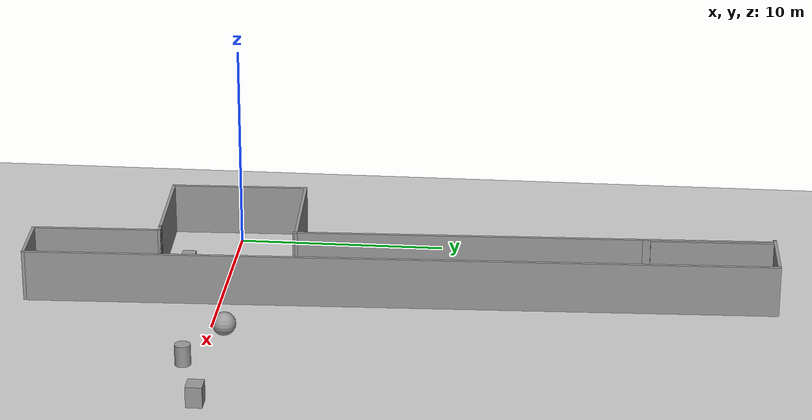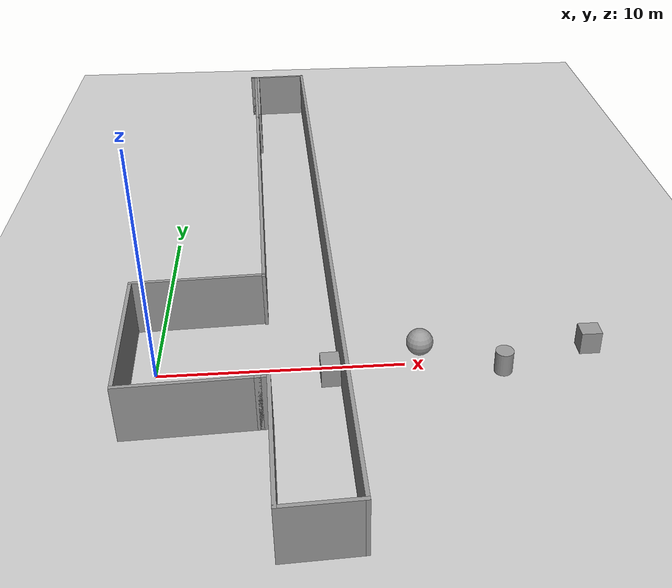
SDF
<sdf version="1.7">
 <world name="default">
  <model name="ground_plane">
   <static>1</static>
   <link name="link">
    <collision name="collision">
     <geometry><plane><normal>0 0 1</normal><size>100 100</size></plane></geometry>
     <surface><friction><ode><mu>100</mu><mu2>50</mu2></ode></friction></surface>
    </collision>
    <visual name="visual">
     <cast_shadows>0</cast_shadows>
     <geometry><plane><normal>0 0 1</normal><size>100 100</size></plane></geometry>
     <material>
      <script><uri>file://media/materials/scripts/gazebo.material</uri><name>Gazebo/Grey</name></script>
     </material>
    </visual>
   </link>
  </model>
  <model name="unit_box">
   <pose>3.9263 -2.03649 0.499998 2e-06 8e-06 -8e-06</pose>
   <link name="link">
    <inertial>
     <mass>1</mass>
     <inertia>
      <ixx>0.166667</ixx>
      <ixy>0</ixy>
      <ixz>0</ixz>
      <iyy>0.166667</iyy>
      <iyz>0</iyz>
      <izz>0.166667</izz>
     </inertia>
    </inertial>
    <collision name="collision"><geometry><box><size>0.649732 0.661628 1</size></box></geometry></collision>
    <visual name="visual">
     <geometry><box><size>0.649732 0.661628 1</size></box></geometry>
     <material>
      <script><name>Gazebo/Grey</name><uri>file://media/materials/scripts/gazebo.material</uri></script>
     </material>
    </visual>
   </link>
  </model>
  <model name="unit_box_0">
   <pose>6.94854 -0.698933 0.5 0 -0 0.039624</pose>
   <link name="link">
    <inertial>
     <mass>1</mass>
     <inertia>
      <ixx>0.166667</ixx>
      <ixy>0</ixy>
      <ixz>0</ixz>
      <iyy>0.166667</iyy>
      <iyz>0</iyz>
      <izz>0.166667</izz>
     </inertia>
    </inertial>
    <collision name="collision"><geometry><box><size>0.771161 0.928097 1</size></box></geometry></collision>
    <visual name="visual">
     <geometry><box><size>0.771161 0.928097 1</size></box></geometry>
     <material>
      <script><name>Gazebo/Grey</name><uri>file://media/materials/scripts/gazebo.material</uri></script>
     </material>
    </visual>
   </link>
  </model>
  <model name="unit_cylinder">
   <pose>13.9074 -0.685815 0.499997 -1e-06 -1e-06 0</pose>
   <link name="link">
    <inertial>
     <mass>1</mass>
     <inertia><ixx>0.145833</ixx><ixy>0</ixy><ixz>0</ixz><iyy>0.145833</iyy><iyz>0</iyz><izz>0.125</izz></inertia>
    </inertial>
    <collision name="collision">
     <geometry><cylinder><radius>0.37177</radius><length>1</length></cylinder></geometry>
    </collision>
    <visual name="visual">
     <geometry><cylinder><radius>0.37177</radius><length>1</length></cylinder></geometry>
     <material>
      <script><name>Gazebo/Grey</name><uri>file://media/materials/scripts/gazebo.material</uri></script>
     </material>
    </visual>
   </link>
  </model>
  <model name="unit_box_1">
   <pose>17.7072 0.498329 0.499997 2e-06 9e-06 -1e-06</pose>
   <link name="link">
    <inertial>
     <mass>1</mass>
     <inertia>
      <ixx>0.166667</ixx>
      <ixy>0</ixy>
      <ixz>0</ixz>
      <iyy>0.166667</iyy>
      <iyz>0</iyz>
      <izz>0.166667</izz>
     </inertia>
    </inertial>
    <collision name="collision"><geometry><box><size>0.855045 0.757489 1</size></box></geometry></collision>
    <visual name="visual">
     <geometry><box><size>0.855045 0.757489 1</size></box></geometry>
     <material>
      <script><name>Gazebo/Grey</name><uri>file://media/materials/scripts/gazebo.material</uri></script>
     </material>
    </visual>
   </link>
  </model>
  <model name="envStR02">
   <link name="Wall_100">
    <pose>2e-06 4.2 0 0 -0 3.14159</pose>
    <visual name="Wall_100_Visual">
     <pose>0 0 1.25 0 -0 0</pose>
     <geometry><box><size>35.75 0.15 2.5</size></box></geometry>
     <material>
      <script><uri>file://media/materials/scripts/gazebo.material</uri><name>Gazebo/Grey</name></script>
      <ambient>1 1 1 1</ambient>
      <shader type="pixel"/>
     </material>
     <meta><layer>0</layer></meta>
    </visual>
    <collision name="Wall_100_Collision">
     <pose>0 0 1.25 0 -0 0</pose>
     <geometry><box><size>35.75 0.15 2.5</size></box></geometry>
     <surface>
      <friction>
       <ode><mu>1</mu><mu2>1</mu2><fdir1>0 0 0</fdir1><slip1>0</slip1><slip2>0</slip2></ode>
       <torsional>
        <coefficient>1</coefficient>
        <patch_radius>0</patch_radius>
        <surface_radius>0</surface_radius>
        <use_patch_radius>1</use_patch_radius>
        <ode><slip>0</slip></ode>
       </torsional>
      </friction>
      <bounce><restitution_coefficient>0</restitution_coefficient><threshold>1e+06</threshold></bounce>
      <contact>
       <collide_without_contact>0</collide_without_contact>
       <collide_without_contact_bitmask>1</collide_without_contact_bitmask>
       <collide_bitmask>1</collide_bitmask>
       <ode>
        <soft_cfm>0</soft_cfm>
        <soft_erp>0.2</soft_erp>
        <kp>1e+13</kp>
        <kd>1</kd>
        <max_vel>0.01</max_vel>
        <min_depth>0</min_depth>
       </ode>
       <bullet>
        <split_impulse>1</split_impulse>
        <split_impulse_penetration_threshold>-0.01</split_impulse_penetration_threshold>
        <soft_cfm>0</soft_cfm>
        <soft_erp>0.2</soft_erp>
        <kp>1e+13</kp>
        <kd>1</kd>
       </bullet>
      </contact>
     </surface>
    </collision>
   </link>
   <link name="Wall_101">
    <pose>-17.8 2.65 0 0 0 -1.5708</pose>
    <visual name="Wall_101_Visual">
     <pose>0 0 1.25 0 -0 0</pose>
     <geometry><box><size>3.25 0.15 2.5</size></box></geometry>
     <material>
      <script><uri>file://media/materials/scripts/gazebo.material</uri><name>Gazebo/Grey</name></script>
      <ambient>1 1 1 1</ambient>
      <shader type="pixel"/>
     </material>
     <meta><layer>0</layer></meta>
    </visual>
    <collision name="Wall_101_Collision">
     <pose>0 0 1.25 0 -0 0</pose>
     <geometry><box><size>3.25 0.15 2.5</size></box></geometry>
     <surface>
      <friction>
       <ode><mu>1</mu><mu2>1</mu2><fdir1>0 0 0</fdir1><slip1>0</slip1><slip2>0</slip2></ode>
       <torsional>
        <coefficient>1</coefficient>
        <patch_radius>0</patch_radius>
        <surface_radius>0</surface_radius>
        <use_patch_radius>1</use_patch_radius>
        <ode><slip>0</slip></ode>
       </torsional>
      </friction>
      <bounce><restitution_coefficient>0</restitution_coefficient><threshold>1e+06</threshold></bounce>
      <contact>
       <collide_without_contact>0</collide_without_contact>
       <collide_without_contact_bitmask>1</collide_without_contact_bitmask>
       <collide_bitmask>1</collide_bitmask>
       <ode>
        <soft_cfm>0</soft_cfm>
        <soft_erp>0.2</soft_erp>
        <kp>1e+13</kp>
        <kd>1</kd>
        <max_vel>0.01</max_vel>
        <min_depth>0</min_depth>
       </ode>
       <bullet>
        <split_impulse>1</split_impulse>
        <split_impulse_penetration_threshold>-0.01</split_impulse_penetration_threshold>
        <soft_cfm>0</soft_cfm>
        <soft_erp>0.2</soft_erp>
        <kp>1e+13</kp>
        <kd>1</kd>
       </bullet>
      </contact>
     </surface>
    </collision>
   </link>
   <link name="Wall_102">
    <pose>-17.8 1.275 0 0 -0 1.5708</pose>
    <visual name="Wall_102_Visual">
     <pose>0 0 1.25 0 -0 0</pose>
     <geometry><box><size>0.5 0.15 2.5</size></box></geometry>
     <material>
      <script><uri>file://media/materials/scripts/gazebo.material</uri><name>Gazebo/Grey</name></script>
      <ambient>1 1 1 1</ambient>
      <shader type="pixel"/>
     </material>
     <meta><layer>0</layer></meta>
    </visual>
    <collision name="Wall_102_Collision">
     <pose>0 0 1.25 0 -0 0</pose>
     <geometry><box><size>0.5 0.15 2.5</size></box></geometry>
     <surface>
      <friction>
       <ode><mu>1</mu><mu2>1</mu2><fdir1>0 0 0</fdir1><slip1>0</slip1><slip2>0</slip2></ode>
       <torsional>
        <coefficient>1</coefficient>
        <patch_radius>0</patch_radius>
        <surface_radius>0</surface_radius>
        <use_patch_radius>1</use_patch_radius>
        <ode><slip>0</slip></ode>
       </torsional>
      </friction>
      <bounce><restitution_coefficient>0</restitution_coefficient><threshold>1e+06</threshold></bounce>
      <contact>
       <collide_without_contact>0</collide_without_contact>
       <collide_without_contact_bitmask>1</collide_without_contact_bitmask>
       <collide_bitmask>1</collide_bitmask>
       <ode>
        <soft_cfm>0</soft_cfm>
        <soft_erp>0.2</soft_erp>
        <kp>1e+13</kp>
        <kd>1</kd>
        <max_vel>0.01</max_vel>
        <min_depth>0</min_depth>
       </ode>
       <bullet>
        <split_impulse>1</split_impulse>
        <split_impulse_penetration_threshold>-0.01</split_impulse_penetration_threshold>
        <soft_cfm>0</soft_cfm>
        <soft_erp>0.2</soft_erp>
        <kp>1e+13</kp>
        <kd>1</kd>
       </bullet>
      </contact>
     </surface>
    </collision>
   </link>
   <link name="Wall_103">
    <pose>-14.875 1.45 0 0 -0 0</pose>
    <visual name="Wall_103_Visual">
     <pose>0 0 1.25 0 -0 0</pose>
     <geometry><box><size>6 0.15 2.5</size></box></geometry>
     <material>
      <script><uri>file://media/materials/scripts/gazebo.material</uri><name>Gazebo/Grey</name></script>
      <ambient>1 1 1 1</ambient>
      <shader type="pixel"/>
     </material>
     <meta><layer>0</layer></meta>
    </visual>
    <collision name="Wall_103_Collision">
     <pose>0 0 1.25 0 -0 0</pose>
     <geometry><box><size>6 0.15 2.5</size></box></geometry>
     <surface>
      <friction>
       <ode><mu>1</mu><mu2>1</mu2><fdir1>0 0 0</fdir1><slip1>0</slip1><slip2>0</slip2></ode>
       <torsional>
        <coefficient>1</coefficient>
        <patch_radius>0</patch_radius>
        <surface_radius>0</surface_radius>
        <use_patch_radius>1</use_patch_radius>
        <ode><slip>0</slip></ode>
       </torsional>
      </friction>
      <bounce><restitution_coefficient>0</restitution_coefficient><threshold>1e+06</threshold></bounce>
      <contact>
       <collide_without_contact>0</collide_without_contact>
       <collide_without_contact_bitmask>1</collide_without_contact_bitmask>
       <collide_bitmask>1</collide_bitmask>
       <ode>
        <soft_cfm>0</soft_cfm>
        <soft_erp>0.2</soft_erp>
        <kp>1e+13</kp>
        <kd>1</kd>
        <max_vel>0.01</max_vel>
        <min_depth>0</min_depth>
       </ode>
       <bullet>
        <split_impulse>1</split_impulse>
        <split_impulse_penetration_threshold>-0.01</split_impulse_penetration_threshold>
        <soft_cfm>0</soft_cfm>
        <soft_erp>0.2</soft_erp>
        <kp>1e+13</kp>
        <kd>1</kd>
       </bullet>
      </contact>
     </surface>
    </collision>
   </link>
   <link name="Wall_105">
    <pose>-14.5936 1.31863 0 0 -0 3.14159</pose>
    <visual name="Wall_105_Visual">
     <pose>0 0 1.25 0 -0 0</pose>
     <geometry><box><size>6.5 0.15 2.5</size></box></geometry>
     <material>
      <script><uri>file://media/materials/scripts/gazebo.material</uri><name>Gazebo/Grey</name></script>
      <ambient>1 1 1 1</ambient>
      <shader type="pixel"/>
     </material>
     <meta><layer>0</layer></meta>
    </visual>
    <collision name="Wall_105_Collision">
     <pose>0 0 1.25 0 -0 0</pose>
     <geometry><box><size>6.5 0.15 2.5</size></box></geometry>
     <surface>
      <friction>
       <ode><mu>1</mu><mu2>1</mu2><fdir1>0 0 0</fdir1><slip1>0</slip1><slip2>0</slip2></ode>
       <torsional>
        <coefficient>1</coefficient>
        <patch_radius>0</patch_radius>
        <surface_radius>0</surface_radius>
        <use_patch_radius>1</use_patch_radius>
        <ode><slip>0</slip></ode>
       </torsional>
      </friction>
      <bounce><restitution_coefficient>0</restitution_coefficient><threshold>1e+06</threshold></bounce>
      <contact>
       <collide_without_contact>0</collide_without_contact>
       <collide_without_contact_bitmask>1</collide_without_contact_bitmask>
       <collide_bitmask>1</collide_bitmask>
       <ode>
        <soft_cfm>0</soft_cfm>
        <soft_erp>0.2</soft_erp>
        <kp>1e+13</kp>
        <kd>1</kd>
        <max_vel>0.01</max_vel>
        <min_depth>0</min_depth>
       </ode>
       <bullet>
        <split_impulse>1</split_impulse>
        <split_impulse_penetration_threshold>-0.01</split_impulse_penetration_threshold>
        <soft_cfm>0</soft_cfm>
        <soft_erp>0.2</soft_erp>
        <kp>1e+13</kp>
        <kd>1</kd>
       </bullet>
      </contact>
     </surface>
    </collision>
   </link>
   <link name="Wall_92">
    <pose>-3.11863 1.31863 0 0 -0 0</pose>
    <inertial>
     <mass>6.28125</mass>
     <inertia><ixx>3.28326</ixx><ixy>0</ixy><ixz>0</ixz><iyy>150.128</iyy><iyz>0</iyz><izz>146.869</izz></inertia>
    </inertial>
    <visual name="Wall_92_Visual">
     <pose>0 0 1.25 0 -0 0</pose>
     <geometry><box><size>16.75 0.15 2.5</size></box></geometry>
     <material>
      <script><uri>file://media/materials/scripts/gazebo.material</uri><name>Gazebo/Grey</name></script>
      <ambient>1 1 1 1</ambient>
      <shader type="pixel"><normal_map>__default__</normal_map></shader>
      <diffuse>0.7 0.7 0.7 1</diffuse>
      <specular>0.01 0.01 0.01 1</specular>
      <emissive>0 0 0 1</emissive>
     </material>
     <meta><layer>0</layer></meta>
    </visual>
    <collision name="Wall_92_Collision">
     <pose>0 0 1.25 0 -0 0</pose>
     <geometry><box><size>16.75 0.15 2.5</size></box></geometry>
     <surface>
      <friction>
       <ode><mu>1</mu><mu2>1</mu2><fdir1>0 0 0</fdir1><slip1>0</slip1><slip2>0</slip2></ode>
       <torsional>
        <coefficient>1</coefficient>
        <patch_radius>0</patch_radius>
        <surface_radius>0</surface_radius>
        <use_patch_radius>1</use_patch_radius>
        <ode><slip>0</slip></ode>
       </torsional>
      </friction>
      <bounce><restitution_coefficient>0</restitution_coefficient><threshold>1e+06</threshold></bounce>
      <contact>
       <collide_without_contact>0</collide_without_contact>
       <collide_without_contact_bitmask>1</collide_without_contact_bitmask>
       <collide_bitmask>1</collide_bitmask>
       <ode>
        <soft_cfm>0</soft_cfm>
        <soft_erp>0.2</soft_erp>
        <kp>1e+13</kp>
        <kd>1</kd>
        <max_vel>0.01</max_vel>
        <min_depth>0</min_depth>
       </ode>
       <bullet>
        <split_impulse>1</split_impulse>
        <split_impulse_penetration_threshold>-0.01</split_impulse_penetration_threshold>
        <soft_cfm>0</soft_cfm>
        <soft_erp>0.2</soft_erp>
        <kp>1e+13</kp>
        <kd>1</kd>
       </bullet>
      </contact>
     </surface>
    </collision>
   </link>
   <link name="Wall_93">
    <pose>5.1 -1.44068 0 0 0 -1.5708</pose>
    <visual name="Wall_93_Visual">
     <pose>0 0 1.25 0 -0 0</pose>
     <geometry><box><size>5.66863 0.15 2.5</size></box></geometry>
     <material>
      <script><uri>file://media/materials/scripts/gazebo.material</uri><name>Gazebo/Grey</name></script>
      <ambient>1 1 1 1</ambient>
      <shader type="pixel"/>
     </material>
     <meta><layer>0</layer></meta>
    </visual>
    <collision name="Wall_93_Collision">
     <pose>0 0 1.25 0 -0 0</pose>
     <geometry><box><size>5.66863 0.15 2.5</size></box></geometry>
     <surface>
      <friction>
       <ode><mu>1</mu><mu2>1</mu2><fdir1>0 0 0</fdir1><slip1>0</slip1><slip2>0</slip2></ode>
       <torsional>
        <coefficient>1</coefficient>
        <patch_radius>0</patch_radius>
        <surface_radius>0</surface_radius>
        <use_patch_radius>1</use_patch_radius>
        <ode><slip>0</slip></ode>
       </torsional>
      </friction>
      <bounce><restitution_coefficient>0</restitution_coefficient><threshold>1e+06</threshold></bounce>
      <contact>
       <collide_without_contact>0</collide_without_contact>
       <collide_without_contact_bitmask>1</collide_without_contact_bitmask>
       <collide_bitmask>1</collide_bitmask>
       <ode>
        <soft_cfm>0</soft_cfm>
        <soft_erp>0.2</soft_erp>
        <kp>1e+13</kp>
        <kd>1</kd>
        <max_vel>0.01</max_vel>
        <min_depth>0</min_depth>
       </ode>
       <bullet>
        <split_impulse>1</split_impulse>
        <split_impulse_penetration_threshold>-0.01</split_impulse_penetration_threshold>
        <soft_cfm>0</soft_cfm>
        <soft_erp>0.2</soft_erp>
        <kp>1e+13</kp>
        <kd>1</kd>
       </bullet>
      </contact>
     </surface>
    </collision>
   </link>
   <link name="Wall_94">
    <pose>8.4 -4.2 0 0 -0 0</pose>
    <visual name="Wall_94_Visual">
     <pose>0 0 1.25 0 -0 0</pose>
     <geometry><box><size>6.75 0.15 2.5</size></box></geometry>
     <material>
      <script><uri>file://media/materials/scripts/gazebo.material</uri><name>Gazebo/Grey</name></script>
      <ambient>1 1 1 1</ambient>
      <shader type="pixel"/>
     </material>
     <meta><layer>0</layer></meta>
    </visual>
    <collision name="Wall_94_Collision">
     <pose>0 0 1.25 0 -0 0</pose>
     <geometry><box><size>6.75 0.15 2.5</size></box></geometry>
     <surface>
      <friction>
       <ode><mu>1</mu><mu2>1</mu2><fdir1>0 0 0</fdir1><slip1>0</slip1><slip2>0</slip2></ode>
       <torsional>
        <coefficient>1</coefficient>
        <patch_radius>0</patch_radius>
        <surface_radius>0</surface_radius>
        <use_patch_radius>1</use_patch_radius>
        <ode><slip>0</slip></ode>
       </torsional>
      </friction>
      <bounce><restitution_coefficient>0</restitution_coefficient><threshold>1e+06</threshold></bounce>
      <contact>
       <collide_without_contact>0</collide_without_contact>
       <collide_without_contact_bitmask>1</collide_without_contact_bitmask>
       <collide_bitmask>1</collide_bitmask>
       <ode>
        <soft_cfm>0</soft_cfm>
        <soft_erp>0.2</soft_erp>
        <kp>1e+13</kp>
        <kd>1</kd>
        <max_vel>0.01</max_vel>
        <min_depth>0</min_depth>
       </ode>
       <bullet>
        <split_impulse>1</split_impulse>
        <split_impulse_penetration_threshold>-0.01</split_impulse_penetration_threshold>
        <soft_cfm>0</soft_cfm>
        <soft_erp>0.2</soft_erp>
        <kp>1e+13</kp>
        <kd>1</kd>
       </bullet>
      </contact>
     </surface>
    </collision>
   </link>
   <link name="Wall_95">
    <pose>11.7 -1.65 0 0 -0 1.5708</pose>
    <visual name="Wall_95_Visual">
     <pose>0 0 1.25 0 -0 0</pose>
     <geometry><box><size>5.25 0.15 2.5</size></box></geometry>
     <material>
      <script><uri>file://media/materials/scripts/gazebo.material</uri><name>Gazebo/Grey</name></script>
      <ambient>1 1 1 1</ambient>
      <shader type="pixel"/>
     </material>
     <meta><layer>0</layer></meta>
    </visual>
    <collision name="Wall_95_Collision">
     <pose>0 0 1.25 0 -0 0</pose>
     <geometry><box><size>5.25 0.15 2.5</size></box></geometry>
     <surface>
      <friction>
       <ode><mu>1</mu><mu2>1</mu2><fdir1>0 0 0</fdir1><slip1>0</slip1><slip2>0</slip2></ode>
       <torsional>
        <coefficient>1</coefficient>
        <patch_radius>0</patch_radius>
        <surface_radius>0</surface_radius>
        <use_patch_radius>1</use_patch_radius>
        <ode><slip>0</slip></ode>
       </torsional>
      </friction>
      <bounce><restitution_coefficient>0</restitution_coefficient><threshold>1e+06</threshold></bounce>
      <contact>
       <collide_without_contact>0</collide_without_contact>
       <collide_without_contact_bitmask>1</collide_without_contact_bitmask>
       <collide_bitmask>1</collide_bitmask>
       <ode>
        <soft_cfm>0</soft_cfm>
        <soft_erp>0.2</soft_erp>
        <kp>1e+13</kp>
        <kd>1</kd>
        <max_vel>0.01</max_vel>
        <min_depth>0</min_depth>
       </ode>
       <bullet>
        <split_impulse>1</split_impulse>
        <split_impulse_penetration_threshold>-0.01</split_impulse_penetration_threshold>
        <soft_cfm>0</soft_cfm>
        <soft_erp>0.2</soft_erp>
        <kp>1e+13</kp>
        <kd>1</kd>
       </bullet>
      </contact>
     </surface>
    </collision>
   </link>
   <link name="Wall_96">
    <pose>11.7 0.95 0 0 -0 1.5708</pose>
    <visual name="Wall_96_Visual">
     <pose>0 0 1.25 0 -0 0</pose>
     <geometry><box><size>0.25 0.15 2.5</size></box></geometry>
     <material>
      <script><uri>file://media/materials/scripts/gazebo.material</uri><name>Gazebo/Grey</name></script>
      <ambient>1 1 1 1</ambient>
      <shader type="pixel"/>
     </material>
     <meta><layer>0</layer></meta>
    </visual>
    <collision name="Wall_96_Collision">
     <pose>0 0 1.25 0 -0 0</pose>
     <geometry><box><size>0.25 0.15 2.5</size></box></geometry>
     <surface>
      <friction>
       <ode><mu>1</mu><mu2>1</mu2><fdir1>0 0 0</fdir1><slip1>0</slip1><slip2>0</slip2></ode>
       <torsional>
        <coefficient>1</coefficient>
        <patch_radius>0</patch_radius>
        <surface_radius>0</surface_radius>
        <use_patch_radius>1</use_patch_radius>
        <ode><slip>0</slip></ode>
       </torsional>
      </friction>
      <bounce><restitution_coefficient>0</restitution_coefficient><threshold>1e+06</threshold></bounce>
      <contact>
       <collide_without_contact>0</collide_without_contact>
       <collide_without_contact_bitmask>1</collide_without_contact_bitmask>
       <collide_bitmask>1</collide_bitmask>
       <ode>
        <soft_cfm>0</soft_cfm>
        <soft_erp>0.2</soft_erp>
        <kp>1e+13</kp>
        <kd>1</kd>
        <max_vel>0.01</max_vel>
        <min_depth>0</min_depth>
       </ode>
       <bullet>
        <split_impulse>1</split_impulse>
        <split_impulse_penetration_threshold>-0.01</split_impulse_penetration_threshold>
        <soft_cfm>0</soft_cfm>
        <soft_erp>0.2</soft_erp>
        <kp>1e+13</kp>
        <kd>1</kd>
       </bullet>
      </contact>
     </surface>
    </collision>
   </link>
   <link name="Wall_97">
    <pose>11.7 1.175 0 0 -0 1.5708</pose>
    <visual name="Wall_97_Visual">
     <pose>0 0 1.25 0 -0 0</pose>
     <geometry><box><size>0.5 0.15 2.5</size></box></geometry>
     <material>
      <script><uri>file://media/materials/scripts/gazebo.material</uri><name>Gazebo/Grey</name></script>
      <ambient>1 1 1 1</ambient>
      <shader type="pixel"/>
     </material>
     <meta><layer>0</layer></meta>
    </visual>
    <collision name="Wall_97_Collision">
     <pose>0 0 1.25 0 -0 0</pose>
     <geometry><box><size>0.5 0.15 2.5</size></box></geometry>
     <surface>
      <friction>
       <ode><mu>1</mu><mu2>1</mu2><fdir1>0 0 0</fdir1><slip1>0</slip1><slip2>0</slip2></ode>
       <torsional>
        <coefficient>1</coefficient>
        <patch_radius>0</patch_radius>
        <surface_radius>0</surface_radius>
        <use_patch_radius>1</use_patch_radius>
        <ode><slip>0</slip></ode>
       </torsional>
      </friction>
      <bounce><restitution_coefficient>0</restitution_coefficient><threshold>1e+06</threshold></bounce>
      <contact>
       <collide_without_contact>0</collide_without_contact>
       <collide_without_contact_bitmask>1</collide_without_contact_bitmask>
       <collide_bitmask>1</collide_bitmask>
       <ode>
        <soft_cfm>0</soft_cfm>
        <soft_erp>0.2</soft_erp>
        <kp>1e+13</kp>
        <kd>1</kd>
        <max_vel>0.01</max_vel>
        <min_depth>0</min_depth>
       </ode>
       <bullet>
        <split_impulse>1</split_impulse>
        <split_impulse_penetration_threshold>-0.01</split_impulse_penetration_threshold>
        <soft_cfm>0</soft_cfm>
        <soft_erp>0.2</soft_erp>
        <kp>1e+13</kp>
        <kd>1</kd>
       </bullet>
      </contact>
     </surface>
    </collision>
   </link>
   <link name="Wall_98">
    <pose>14.75 1.35 0 0 -0 0</pose>
    <visual name="Wall_98_Visual">
     <pose>0 0 1.25 0 -0 0</pose>
     <geometry><box><size>6.25 0.15 2.5</size></box></geometry>
     <material>
      <script><uri>file://media/materials/scripts/gazebo.material</uri><name>Gazebo/Grey</name></script>
      <ambient>1 1 1 1</ambient>
      <shader type="pixel"/>
     </material>
     <meta><layer>0</layer></meta>
    </visual>
    <collision name="Wall_98_Collision">
     <pose>0 0 1.25 0 -0 0</pose>
     <geometry><box><size>6.25 0.15 2.5</size></box></geometry>
     <surface>
      <friction>
       <ode><mu>1</mu><mu2>1</mu2><fdir1>0 0 0</fdir1><slip1>0</slip1><slip2>0</slip2></ode>
       <torsional>
        <coefficient>1</coefficient>
        <patch_radius>0</patch_radius>
        <surface_radius>0</surface_radius>
        <use_patch_radius>1</use_patch_radius>
        <ode><slip>0</slip></ode>
       </torsional>
      </friction>
      <bounce><restitution_coefficient>0</restitution_coefficient><threshold>1e+06</threshold></bounce>
      <contact>
       <collide_without_contact>0</collide_without_contact>
       <collide_without_contact_bitmask>1</collide_without_contact_bitmask>
       <collide_bitmask>1</collide_bitmask>
       <ode>
        <soft_cfm>0</soft_cfm>
        <soft_erp>0.2</soft_erp>
        <kp>1e+13</kp>
        <kd>1</kd>
        <max_vel>0.01</max_vel>
        <min_depth>0</min_depth>
       </ode>
       <bullet>
        <split_impulse>1</split_impulse>
        <split_impulse_penetration_threshold>-0.01</split_impulse_penetration_threshold>
        <soft_cfm>0</soft_cfm>
        <soft_erp>0.2</soft_erp>
        <kp>1e+13</kp>
        <kd>1</kd>
       </bullet>
      </contact>
     </surface>
    </collision>
   </link>
   <link name="Wall_99">
    <pose>17.8 2.775 0 0 -0 1.5708</pose>
    <visual name="Wall_99_Visual">
     <pose>0 0 1.25 0 -0 0</pose>
     <geometry><box><size>3 0.15 2.5</size></box></geometry>
     <material>
      <script><uri>file://media/materials/scripts/gazebo.material</uri><name>Gazebo/Grey</name></script>
      <ambient>1 1 1 1</ambient>
      <shader type="pixel"/>
     </material>
     <meta><layer>0</layer></meta>
    </visual>
    <collision name="Wall_99_Collision">
     <pose>0 0 1.25 0 -0 0</pose>
     <geometry><box><size>3 0.15 2.5</size></box></geometry>
     <surface>
      <friction>
       <ode><mu>1</mu><mu2>1</mu2><fdir1>0 0 0</fdir1><slip1>0</slip1><slip2>0</slip2></ode>
       <torsional>
        <coefficient>1</coefficient>
        <patch_radius>0</patch_radius>
        <surface_radius>0</surface_radius>
        <use_patch_radius>1</use_patch_radius>
        <ode><slip>0</slip></ode>
       </torsional>
      </friction>
      <bounce><restitution_coefficient>0</restitution_coefficient><threshold>1e+06</threshold></bounce>
      <contact>
       <collide_without_contact>0</collide_without_contact>
       <collide_without_contact_bitmask>1</collide_without_contact_bitmask>
       <collide_bitmask>1</collide_bitmask>
       <ode>
        <soft_cfm>0</soft_cfm>
        <soft_erp>0.2</soft_erp>
        <kp>1e+13</kp>
        <kd>1</kd>
        <max_vel>0.01</max_vel>
        <min_depth>0</min_depth>
       </ode>
       <bullet>
        <split_impulse>1</split_impulse>
        <split_impulse_penetration_threshold>-0.01</split_impulse_penetration_threshold>
        <soft_cfm>0</soft_cfm>
        <soft_erp>0.2</soft_erp>
        <kp>1e+13</kp>
        <kd>1</kd>
       </bullet>
      </contact>
     </surface>
    </collision>
   </link>
   <static>1</static>
   <pose>2.84829 8.32742 0 0 0 -1.53116</pose>
  </model>
  <model name="unit_sphere">
   <link name="link">
    <inertial>
     <mass>4.84954</mass>
     <inertia>
      <ixx>0.601807</ixx>
      <ixy>0</ixy>
      <ixz>0</ixz>
      <iyy>0.601807</iyy>
      <iyz>0</iyz>
      <izz>0.601807</izz>
     </inertia>
    </inertial>
    <visual name="visual">
     <geometry><sphere><radius>0.556991</radius></sphere></geometry>
     <material>
      <script><name>Gazebo/Grey</name><uri>file://media/materials/scripts/gazebo.material</uri></script>
      <shader type="pixel"><normal_map>__default__</normal_map></shader>
     </material>
    </visual>
    <collision name="collision">
     <geometry><sphere><radius>0.556991</radius></sphere></geometry>
     <surface>
      <friction>
       <ode><mu>1</mu><mu2>1</mu2><fdir1>0 0 0</fdir1><slip1>0</slip1><slip2>0</slip2></ode>
       <torsional>
        <coefficient>1</coefficient>
        <patch_radius>0</patch_radius>
        <surface_radius>0</surface_radius>
        <use_patch_radius>1</use_patch_radius>
        <ode><slip>0</slip></ode>
       </torsional>
      </friction>
      <bounce><restitution_coefficient>0</restitution_coefficient><threshold>1e+06</threshold></bounce>
      <contact>
       <collide_without_contact>0</collide_without_contact>
       <collide_without_contact_bitmask>1</collide_without_contact_bitmask>
       <collide_bitmask>1</collide_bitmask>
       <ode>
        <soft_cfm>0</soft_cfm>
        <soft_erp>0.2</soft_erp>
        <kp>1e+13</kp>
        <kd>1</kd>
        <max_vel>0.01</max_vel>
        <min_depth>0</min_depth>
       </ode>
       <bullet>
        <split_impulse>1</split_impulse>
        <split_impulse_penetration_threshold>-0.01</split_impulse_penetration_threshold>
        <soft_cfm>0</soft_cfm>
        <soft_erp>0.2</soft_erp>
        <kp>1e+13</kp>
        <kd>1</kd>
       </bullet>
      </contact>
     </surface>
    </collision>
   </link>
   <static>0</static>
   <pose>10.6873 0.716183 0.556991 -0.030893 0 0</pose>
  </model>
 </world>
</sdf>
